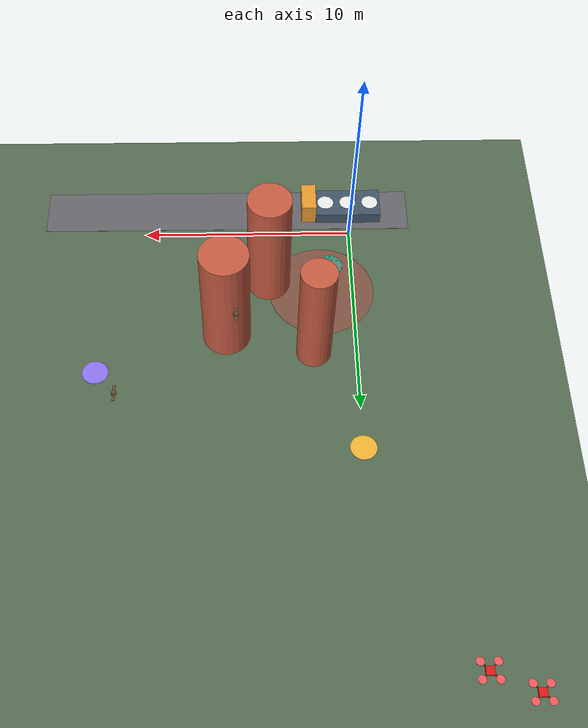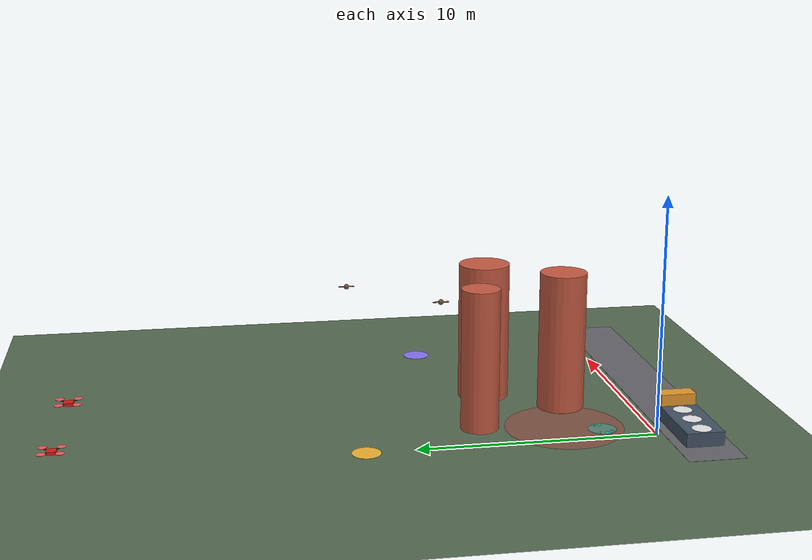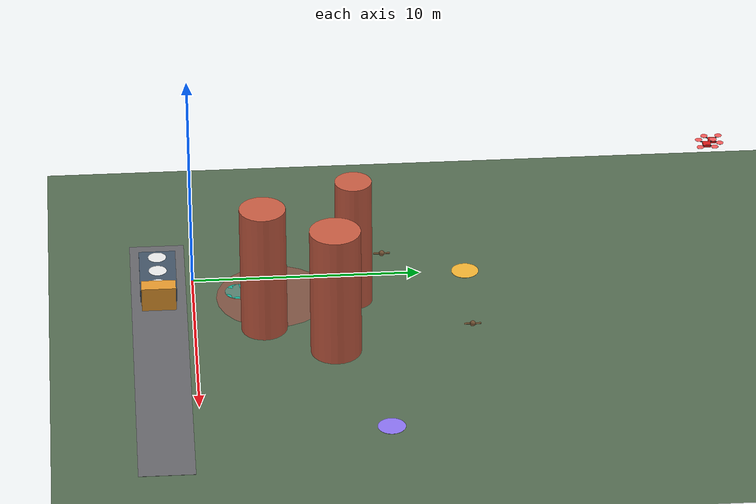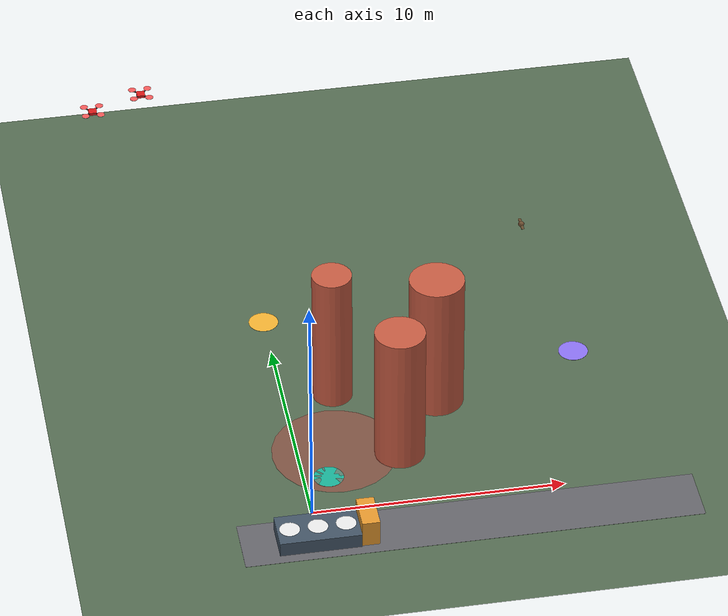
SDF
<sdf version="1.9">
 <world name="guardian">
  <physics name="physics" type="ignored">
   <max_step_size>0.004</max_step_size>
   <real_time_factor>1</real_time_factor>
  </physics>
  <gravity>0 0 -9.81</gravity>
  <magnetic_field>6e-6 2.3e-5 -4.2e-5</magnetic_field>
  <plugin filename="gz-sim-physics-system" name="gz::sim::systems::Physics"/>
  <plugin filename="gz-sim-user-commands-system" name="gz::sim::systems::UserCommands"/>
  <plugin filename="gz-sim-scene-broadcaster-system" name="gz::sim::systems::SceneBroadcaster"/>
  <plugin filename="gz-sim-imu-system" name="gz::sim::systems::Imu"/>
  <plugin filename="gz-sim-magnetometer-system" name="gz::sim::systems::Magnetometer"/>
  <plugin filename="gz-sim-air-pressure-system" name="gz::sim::systems::AirPressure"/>
  <plugin filename="gz-sim-navsat-system" name="gz::sim::systems::NavSat"/>
  <plugin filename="gz-sim-sensors-system" name="gz::sim::systems::Sensors">
   <render_engine>ogre2</render_engine>
  </plugin>
  <spherical_coordinates>
   <surface_model>EARTH_WGS84</surface_model>
   <world_frame_orientation>ENU</world_frame_orientation>
   <latitude_deg>47.397971</latitude_deg>
   <longitude_deg>8.546164</longitude_deg>
   <elevation>0</elevation>
  </spherical_coordinates>
  <scene>
   <ambient>0.55 0.55 0.55 1</ambient>
   <background>0.62 0.76 0.9 1</background>
   <shadows>true</shadows>
   <grid>false</grid>
  </scene>
  <light type="directional" name="sun">
   <pose>0 0 10 0 0 0</pose>
   <diffuse>0.8 0.8 0.8 1</diffuse>
   <direction>-0.5 0.1 -0.9</direction>
  </light>
  <model name="ground">
   <static>true</static>
   <link name="link">
    <collision name="collision">
     <geometry><plane><normal>0 0 1</normal><size>100 100</size></plane></geometry>
     <surface><friction><ode><mu>0.8</mu><mu2>0.8</mu2></ode></friction></surface>
    </collision>
    <visual name="visual">
     <geometry><plane><normal>0 0 1</normal><size>100 100</size></plane></geometry>
     <material><ambient>0.25 0.3 0.25 1</ambient><diffuse>0.33 0.42 0.32 1</diffuse></material>
    </visual>
   </link>
  </model>
  <model name="road">
   <static>true</static>
   <pose>6 -1.5 0.004 0 0 0</pose>
   <link name="link">
    <visual name="visual">
     <geometry><box><size>18 2.4 0.008</size></box></geometry>
     <material><ambient>0.35 0.35 0.37 1</ambient><diffuse>0.4 0.4 0.42 1</diffuse></material>
    </visual>
   </link>
  </model>
  <model name="obstacle_1">
   <static>true</static>
   <pose>4 3 3 0 0 0</pose>
   <link name="link">
    <collision name="collision">
     <geometry><cylinder><radius>1</radius><length>6</length></cylinder></geometry>
    </collision>
    <visual name="visual">
     <geometry><cylinder><radius>1</radius><length>6</length></cylinder></geometry>
     <material><ambient>0.7 0.3 0.2 1</ambient><diffuse>0.78 0.36 0.26 1</diffuse></material>
    </visual>
   </link>
  </model>
  <model name="obstacle_2">
   <static>true</static>
   <pose>6 6 3 0 0 0</pose>
   <link name="link">
    <collision name="collision">
     <geometry><cylinder><radius>1.1</radius><length>6</length></cylinder></geometry>
    </collision>
    <visual name="visual">
     <geometry><cylinder><radius>1.1</radius><length>6</length></cylinder></geometry>
     <material><ambient>0.7 0.3 0.2 1</ambient><diffuse>0.78 0.36 0.26 1</diffuse></material>
    </visual>
   </link>
  </model>
  <model name="obstacle_3">
   <static>true</static>
   <pose>2 7 3 0 0 0</pose>
   <link name="link">
    <collision name="collision">
     <geometry><cylinder><radius>0.8</radius><length>6</length></cylinder></geometry>
    </collision>
    <visual name="visual">
     <geometry><cylinder><radius>0.8</radius><length>6</length></cylinder></geometry>
     <material><ambient>0.7 0.3 0.2 1</ambient><diffuse>0.78 0.36 0.26 1</diffuse></material>
    </visual>
   </link>
  </model>
  <model name="post_0">
   <static>true</static>
   <pose>1 2 0.005 0 0 0</pose>
   <link name="link">
    <visual name="visual">
     <geometry><cylinder><radius>0.6</radius><length>0.01</length></cylinder></geometry>
     <material><ambient>0.1 0.7 0.6 1</ambient><diffuse>0.1 0.7 0.6 1</diffuse></material>
    </visual>
   </link>
  </model>
  <model name="post_1">
   <static>true</static>
   <pose>0 12 0.005 0 0 0</pose>
   <link name="link">
    <visual name="visual">
     <geometry><cylinder><radius>0.6</radius><length>0.01</length></cylinder></geometry>
     <material><ambient>0.95 0.7 0.2 1</ambient><diffuse>0.95 0.7 0.2 1</diffuse></material>
    </visual>
   </link>
  </model>
  <model name="post_2">
   <static>true</static>
   <pose>12 8 0.005 0 0 0</pose>
   <link name="link">
    <visual name="visual">
     <geometry><cylinder><radius>0.6</radius><length>0.01</length></cylinder></geometry>
     <material><ambient>0.55 0.45 0.95 1</ambient><diffuse>0.55 0.45 0.95 1</diffuse></material>
    </visual>
   </link>
  </model>
  <model name="jamming_zone">
   <static>true</static>
   <pose>1.5 3.5 0.005 0 0 0</pose>
   <link name="link">
    <visual name="visual">
     <transparency>0.65</transparency>
     <geometry><cylinder><radius>2.5</radius><length>0.01</length></cylinder></geometry>
     <material><ambient>0.85 0.2 0.2 1</ambient><diffuse>0.85 0.2 0.2 1</diffuse></material>
    </visual>
   </link>
  </model>
  <model name="intruder">
   <pose>-3.4 23.0 4.0 0 0.0 0.0</pose>
   <link name="body">
    <gravity>false</gravity>
    <inertial>
     <mass>1.5</mass>
     <inertia><ixx>0.02</ixx><iyy>0.02</iyy><izz>0.04</izz><ixy>0</ixy><ixz>0</ixz><iyz>0</iyz></inertia>
    </inertial>
    <visual name="hull">
     <geometry><box><size>0.34 0.34 0.12</size></box></geometry>
     <material><ambient>0.75 0.08 0.08 1</ambient><diffuse>0.85 0.1 0.1 1</diffuse></material>
    </visual>
    <visual name="arm_a">
     <pose>0 0 0.02 0 0 0.785</pose>
     <geometry><box><size>0.9 0.05 0.03</size></box></geometry>
     <material><ambient>0.15 0.15 0.15 1</ambient><diffuse>0.2 0.2 0.2 1</diffuse></material>
    </visual>
    <visual name="arm_b">
     <pose>0 0 0.02 0 0 -0.785</pose>
     <geometry><box><size>0.9 0.05 0.03</size></box></geometry>
     <material><ambient>0.15 0.15 0.15 1</ambient><diffuse>0.2 0.2 0.2 1</diffuse></material>
    </visual>
    <visual name="rotor_0">
     <pose>0.32 0.32 0.05 0 0 0</pose>
     <geometry><cylinder><radius>0.16</radius><length>0.01</length></cylinder></geometry>
     <material><ambient>0.9 0.3 0.3 1</ambient><diffuse>0.95 0.35 0.35 1</diffuse></material>
    </visual>
    <visual name="rotor_1">
     <pose>-0.32 0.32 0.05 0 0 0</pose>
     <geometry><cylinder><radius>0.16</radius><length>0.01</length></cylinder></geometry>
     <material><ambient>0.9 0.3 0.3 1</ambient><diffuse>0.95 0.35 0.35 1</diffuse></material>
    </visual>
    <visual name="rotor_2">
     <pose>0.32 -0.32 0.05 0 0 0</pose>
     <geometry><cylinder><radius>0.16</radius><length>0.01</length></cylinder></geometry>
     <material><ambient>0.9 0.3 0.3 1</ambient><diffuse>0.95 0.35 0.35 1</diffuse></material>
    </visual>
    <visual name="rotor_3">
     <pose>-0.32 -0.32 0.05 0 0 0</pose>
     <geometry><cylinder><radius>0.16</radius><length>0.01</length></cylinder></geometry>
     <material><ambient>0.9 0.3 0.3 1</ambient><diffuse>0.95 0.35 0.35 1</diffuse></material>
    </visual>
   </link>
   <plugin filename="gz-sim-velocity-control-system" name="gz::sim::systems::VelocityControl">
    <topic>/model/intruder/cmd_vel</topic>
   </plugin>
   <plugin filename="gz-sim-odometry-publisher-system" name="gz::sim::systems::OdometryPublisher">
    <odom_frame>world</odom_frame>
    <robot_base_frame>intruder</robot_base_frame>
    <odom_publish_frequency>20</odom_publish_frequency>
    <dimensions>3</dimensions>
   </plugin>
  </model>
  <model name="intruder_2">
   <pose>-5.4 23.5 3.0 0 0.0 0.0</pose>
   <link name="body">
    <gravity>false</gravity>
    <inertial>
     <mass>1.5</mass>
     <inertia><ixx>0.02</ixx><iyy>0.02</iyy><izz>0.04</izz><ixy>0</ixy><ixz>0</ixz><iyz>0</iyz></inertia>
    </inertial>
    <visual name="hull">
     <geometry><box><size>0.34 0.34 0.12</size></box></geometry>
     <material><ambient>0.75 0.08 0.08 1</ambient><diffuse>0.85 0.1 0.1 1</diffuse></material>
    </visual>
    <visual name="arm_a">
     <pose>0 0 0.02 0 0 0.785</pose>
     <geometry><box><size>0.9 0.05 0.03</size></box></geometry>
     <material><ambient>0.15 0.15 0.15 1</ambient><diffuse>0.2 0.2 0.2 1</diffuse></material>
    </visual>
    <visual name="arm_b">
     <pose>0 0 0.02 0 0 -0.785</pose>
     <geometry><box><size>0.9 0.05 0.03</size></box></geometry>
     <material><ambient>0.15 0.15 0.15 1</ambient><diffuse>0.2 0.2 0.2 1</diffuse></material>
    </visual>
    <visual name="rotor_0">
     <pose>0.32 0.32 0.05 0 0 0</pose>
     <geometry><cylinder><radius>0.16</radius><length>0.01</length></cylinder></geometry>
     <material><ambient>0.9 0.3 0.3 1</ambient><diffuse>0.95 0.35 0.35 1</diffuse></material>
    </visual>
    <visual name="rotor_1">
     <pose>-0.32 0.32 0.05 0 0 0</pose>
     <geometry><cylinder><radius>0.16</radius><length>0.01</length></cylinder></geometry>
     <material><ambient>0.9 0.3 0.3 1</ambient><diffuse>0.95 0.35 0.35 1</diffuse></material>
    </visual>
    <visual name="rotor_2">
     <pose>0.32 -0.32 0.05 0 0 0</pose>
     <geometry><cylinder><radius>0.16</radius><length>0.01</length></cylinder></geometry>
     <material><ambient>0.9 0.3 0.3 1</ambient><diffuse>0.95 0.35 0.35 1</diffuse></material>
    </visual>
    <visual name="rotor_3">
     <pose>-0.32 -0.32 0.05 0 0 0</pose>
     <geometry><cylinder><radius>0.16</radius><length>0.01</length></cylinder></geometry>
     <material><ambient>0.9 0.3 0.3 1</ambient><diffuse>0.95 0.35 0.35 1</diffuse></material>
    </visual>
   </link>
   <plugin filename="gz-sim-velocity-control-system" name="gz::sim::systems::VelocityControl">
    <topic>/model/intruder_2/cmd_vel</topic>
   </plugin>
   <plugin filename="gz-sim-odometry-publisher-system" name="gz::sim::systems::OdometryPublisher">
    <odom_frame>world</odom_frame>
    <robot_base_frame>intruder_2</robot_base_frame>
    <odom_publish_frequency>20</odom_publish_frequency>
    <dimensions>3</dimensions>
   </plugin>
  </model>
  <model name="bird_0">
   <pose>10.5 11.5 4.0 0 0.0 0.0</pose>
   <link name="body">
    <gravity>false</gravity>
    <inertial>
     <mass>1.5</mass>
     <inertia><ixx>0.02</ixx><iyy>0.02</iyy><izz>0.04</izz><ixy>0</ixy><ixz>0</ixz><iyz>0</iyz></inertia>
    </inertial>
    <visual name="body">
     <geometry><sphere><radius>0.12</radius></sphere></geometry>
     <material><ambient>0.35 0.25 0.15 1</ambient><diffuse>0.45 0.32 0.2 1</diffuse></material>
    </visual>
    <visual name="wings">
     <geometry><box><size>0.12 0.7 0.02</size></box></geometry>
     <material><ambient>0.3 0.22 0.14 1</ambient><diffuse>0.4 0.3 0.18 1</diffuse></material>
    </visual>
   </link>
   <plugin filename="gz-sim-velocity-control-system" name="gz::sim::systems::VelocityControl">
    <topic>/model/bird_0/cmd_vel</topic>
   </plugin>
   <plugin filename="gz-sim-odometry-publisher-system" name="gz::sim::systems::OdometryPublisher">
    <odom_frame>world</odom_frame>
    <robot_base_frame>bird_0</robot_base_frame>
    <odom_publish_frequency>20</odom_publish_frequency>
    <dimensions>3</dimensions>
   </plugin>
  </model>
  <model name="bird_2">
   <pose>5.5 8.0 4.5 0 0.0 0.0</pose>
   <link name="body">
    <gravity>false</gravity>
    <inertial>
     <mass>1.5</mass>
     <inertia><ixx>0.02</ixx><iyy>0.02</iyy><izz>0.04</izz><ixy>0</ixy><ixz>0</ixz><iyz>0</iyz></inertia>
    </inertial>
    <visual name="body">
     <geometry><sphere><radius>0.12</radius></sphere></geometry>
     <material><ambient>0.35 0.25 0.15 1</ambient><diffuse>0.45 0.32 0.2 1</diffuse></material>
    </visual>
    <visual name="wings">
     <geometry><box><size>0.12 0.7 0.02</size></box></geometry>
     <material><ambient>0.3 0.22 0.14 1</ambient><diffuse>0.4 0.3 0.18 1</diffuse></material>
    </visual>
   </link>
   <plugin filename="gz-sim-velocity-control-system" name="gz::sim::systems::VelocityControl">
    <topic>/model/bird_2/cmd_vel</topic>
   </plugin>
   <plugin filename="gz-sim-odometry-publisher-system" name="gz::sim::systems::OdometryPublisher">
    <odom_frame>world</odom_frame>
    <robot_base_frame>bird_2</robot_base_frame>
    <odom_publish_frequency>20</odom_publish_frequency>
    <dimensions>3</dimensions>
   </plugin>
  </model>
  <model name="carrier">
   <pose>0 -1.5 0 0 0 0</pose>
   <link name="base">
    <inertial>
     <pose>0 0 0.3 0 0 0</pose>
     <mass>2000</mass>
     <inertia><ixx>487</ixx><iyy>1767</iyy><izz>2133</izz><ixy>0</ixy><ixz>0</ixz><iyz>0</iyz></inertia>
    </inertial>
    <collision name="deck">
     <pose>0 0 0.3 0 0 0</pose>
     <geometry><box><size>3.2 1.6 0.6</size></box></geometry>
     <surface><friction><ode><mu>1.0</mu><mu2>1.0</mu2></ode></friction></surface>
    </collision>
    <visual name="deck">
     <pose>0 0 0.3 0 0 0</pose>
     <geometry><box><size>3.2 1.6 0.6</size></box></geometry>
     <material><ambient>0.22 0.28 0.33 1</ambient><diffuse>0.26 0.33 0.4 1</diffuse></material>
    </visual>
    <visual name="cab">
     <pose>1.95 0 0.55 0 0 0</pose>
     <geometry><box><size>0.7 1.5 1.1</size></box></geometry>
     <material><ambient>0.85 0.55 0.15 1</ambient><diffuse>0.9 0.6 0.18 1</diffuse></material>
    </visual>
    <visual name="pad_0">
     <pose>-1.1 0 0.603 0 0 0</pose>
     <geometry><cylinder><radius>0.4</radius><length>0.006</length></cylinder></geometry>
     <material><ambient>0.92 0.92 0.92 1</ambient><diffuse>0.92 0.92 0.92 1</diffuse></material>
    </visual>
    <visual name="pad_1">
     <pose>0 0 0.603 0 0 0</pose>
     <geometry><cylinder><radius>0.4</radius><length>0.006</length></cylinder></geometry>
     <material><ambient>0.92 0.92 0.92 1</ambient><diffuse>0.92 0.92 0.92 1</diffuse></material>
    </visual>
    <visual name="pad_2">
     <pose>1.1 0 0.603 0 0 0</pose>
     <geometry><cylinder><radius>0.4</radius><length>0.006</length></cylinder></geometry>
     <material><ambient>0.92 0.92 0.92 1</ambient><diffuse>0.92 0.92 0.92 1</diffuse></material>
    </visual>
   </link>
   <plugin filename="gz-sim-velocity-control-system" name="gz::sim::systems::VelocityControl">
    <topic>/model/carrier/cmd_vel</topic>
   </plugin>
   <plugin filename="gz-sim-odometry-publisher-system" name="gz::sim::systems::OdometryPublisher">
    <odom_frame>world</odom_frame>
    <robot_base_frame>carrier</robot_base_frame>
    <odom_publish_frequency>20</odom_publish_frequency>
    <dimensions>3</dimensions>
   </plugin>
  </model>
  <model name="overview_camera">
   <static>true</static>
   <pose>4 -13 8 0 0.4 1.5708</pose>
   <link name="link">
    <sensor name="overview" type="camera">
     <always_on>1</always_on>
     <update_rate>25</update_rate>
     <topic>overview_camera</topic>
     <camera>
      <horizontal_fov>1.0</horizontal_fov>
      <image><width>960</width><height>540</height></image>
      <clip><near>0.1</near><far>120</far></clip>
     </camera>
     <plugin filename="gz-sim-camera-video-recorder-system" name="gz::sim::systems::CameraVideoRecorder">
      <service>/overview/record_video</service>
      <use_sim_time>true</use_sim_time>
      <fps>25</fps>
      <bitrate>600000</bitrate>
     </plugin>
    </sensor>
   </link>
  </model>
  <model name="close_camera">
   <static>true</static>
   <pose>-4 -10 4 0 0.2 1.1</pose>
   <link name="link">
    <sensor name="close" type="camera">
     <always_on>1</always_on>
     <update_rate>25</update_rate>
     <topic>close_camera</topic>
     <camera>
      <horizontal_fov>1.0</horizontal_fov>
      <image><width>960</width><height>540</height></image>
      <clip><near>0.1</near><far>120</far></clip>
     </camera>
     <plugin filename="gz-sim-camera-video-recorder-system" name="gz::sim::systems::CameraVideoRecorder">
      <service>/close/record_video</service>
      <use_sim_time>true</use_sim_time>
      <fps>25</fps>
      <bitrate>600000</bitrate>
     </plugin>
    </sensor>
   </link>
  </model>
 </world>
</sdf>
